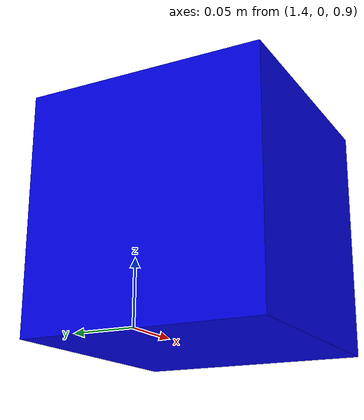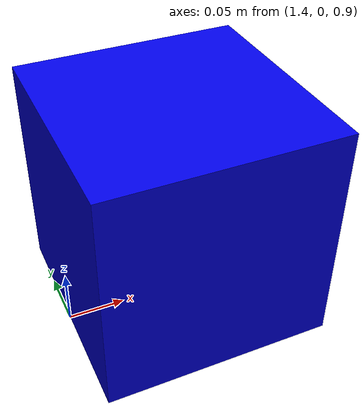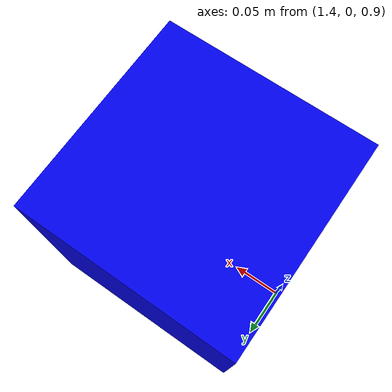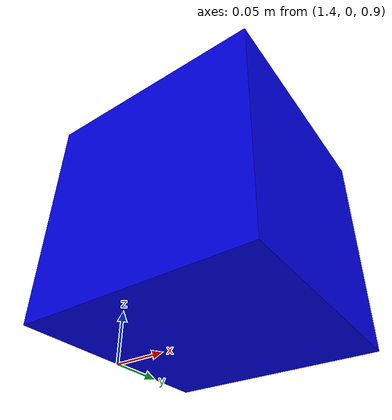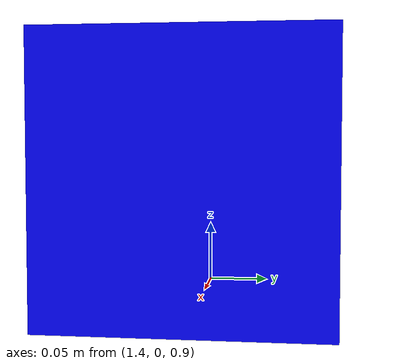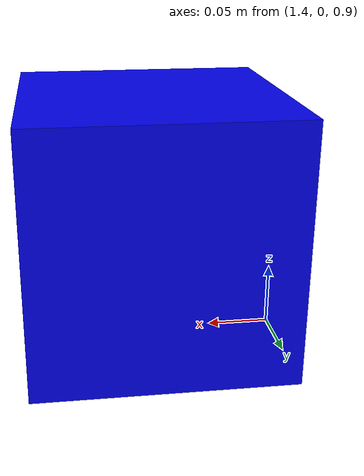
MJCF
<mujoco model="table_with_bowling_simulation">
  <compiler angle="radian" />
  <option timestep="0.001" integrator="RK4">
    <flag energy="enable" />
  </option>
  <size memory="1G" nkey="1" />
  <visual>
    <global azimuth="225" elevation="-30" />
  </visual>
  <asset>
    <texture type="skybox" colorspace="auto" builtin="gradient" rgb1="1 1 1" rgb2="0.6 0.8 1" width="256" height="1536" />
    <texture type="2d" colorspace="auto" name="grid" builtin="checker" rgb1="0.1 0.2 0.3" rgb2="0.2 0.3 0.4" width="512" height="512" />
    <material name="grid" texture="grid" texuniform="true" reflectance="0.2" />
  </asset>
  <worldbody>
    <geom name="floor" size="0 0 0.05" type="plane" material="grid" />
    <light pos="0 0 5" dir="0 0 -1" diffuse="0.5 0.5 0.5" />
    <body name="cube" pos="1.5 0 1">
      <joint type="free" />
      <geom size="0.1 0.1 0.1" type="box" mass="10" rgba="0 0 0.9 1" />
    </body>
  </worldbody>
  <extension>
    <plugin plugin="mujoco.multiverse_connector">
      <instance name="mujoco_client">
        <config key="transport" value="zmq" />
        <config key="host" value="tcp://127.0.0.1" />
        <config key="server_port" value="7000" />
        <config key="client_port" value="7501" />
        <config key="world_name" value="world" />
        <config key="simulation_name" value="world_simulation" />
        <config key="send" value="{}" />
        <config key="receive" value="{'cube': ['relative_velocity', 'position', 'quaternion']}" />
      </instance>
    </plugin>
  </extension>
</mujoco>
